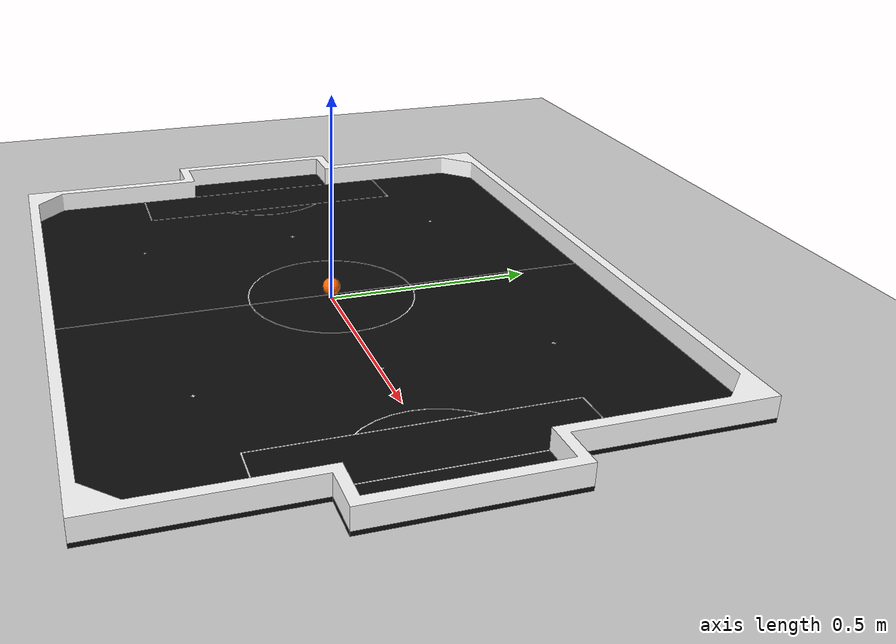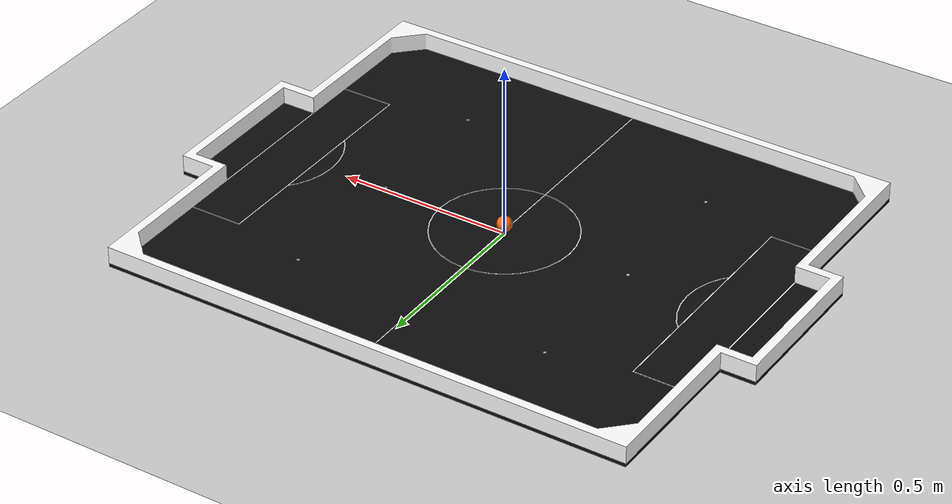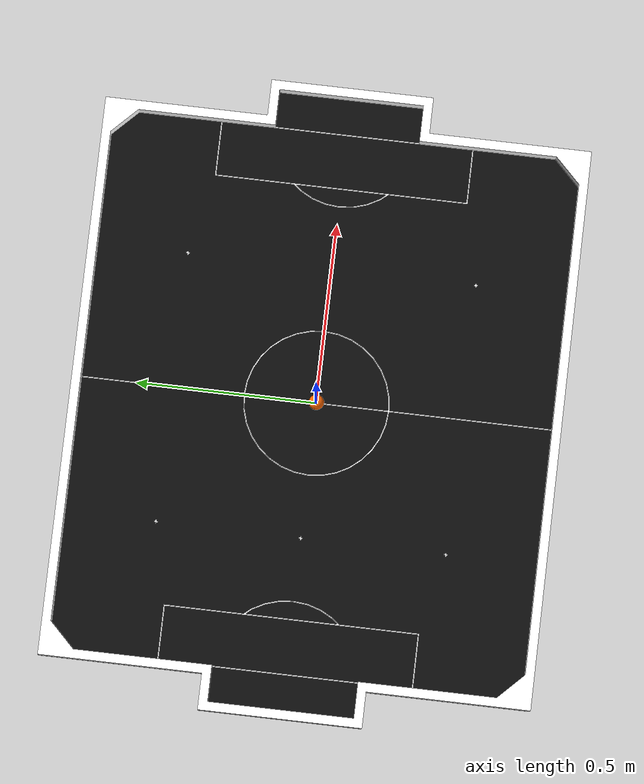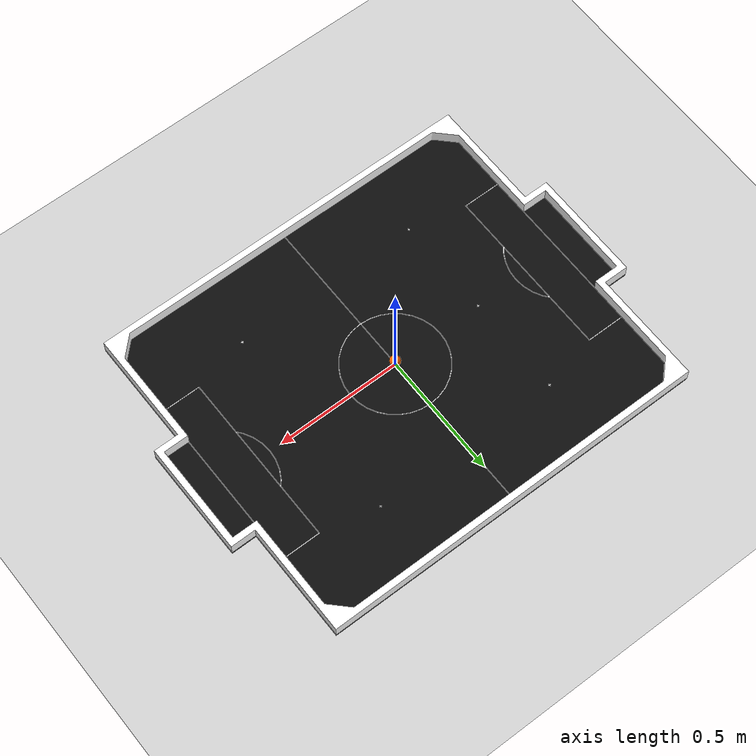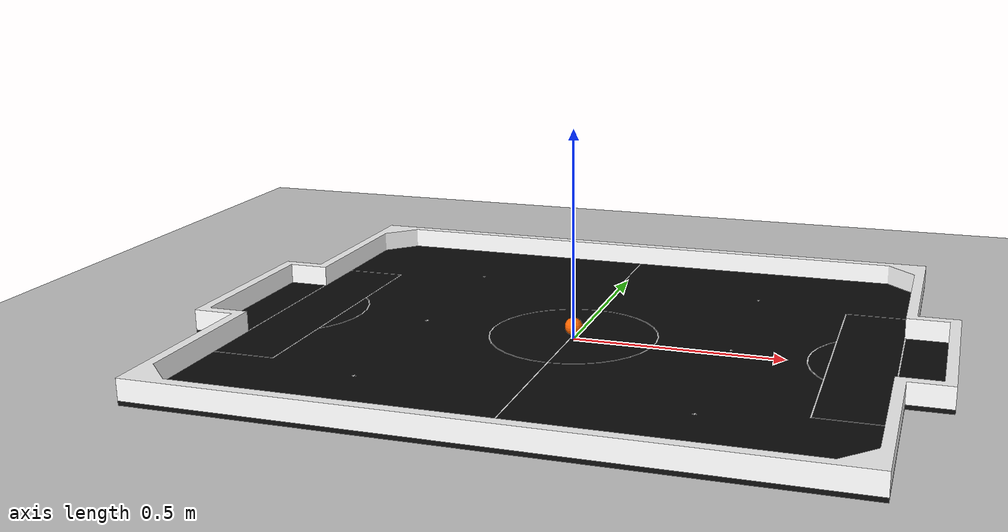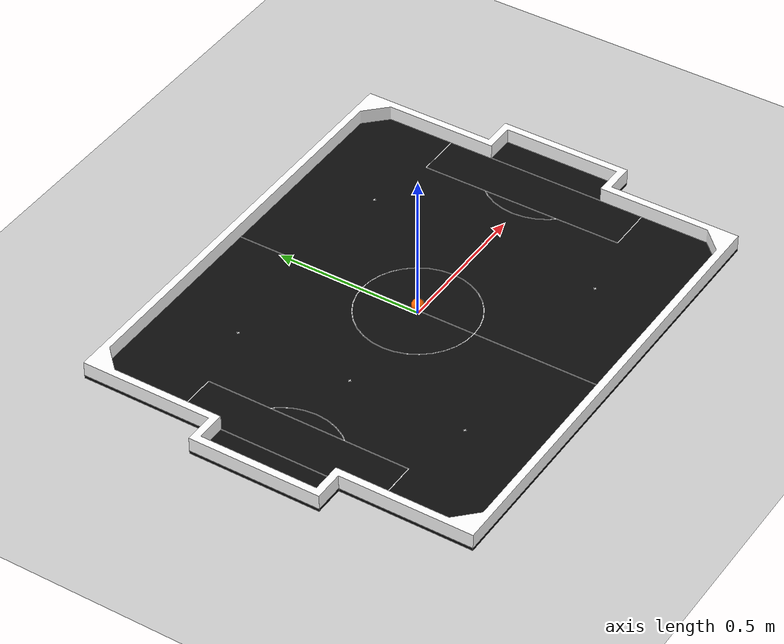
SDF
<?xml version="1.0"?>

<!-- Simple world with vss field and ball
  Ref:
  https://github.com/osrf/gazebo/blob/gazebo11/worlds/robocup09_spl_field.world -->

<!-- Isometric view version -->

<sdf version="1.5">
  <world name="vss_field">
    <!-- A global light source -->
    <include>
      <uri>https://fuel.gazebosim.org/1.0/OpenRobotics/models/Sun</uri>
    </include>

    <!-- A ground plane -->
    <include>
      <uri>https://fuel.gazebosim.org/1.0/OpenRobotics/models/Ground Plane</uri>
    </include>

    <!-- VSS Field -->
    <include>
      <pose>0 0 0.01 0 0 0</pose>
      <uri>model://vss_field</uri>
    </include>

    <!-- VSS ball -->
    <include>
      <pose>0 0 0.0315 0 0 0</pose>
      <uri>model://vss_ball</uri>
    </include>

    <physics type='ode'>
      <real_time_factor>0.5</real_time_factor>
    </physics>

    <!-- Configure camera angles for isometric view -->
    <gui fullscreen='0'>

      <window>
        <position_x>-1</position_x>
        <position_y>-1</position_y>
        <state></state>
        <width>1854</width>
        <height>1011</height>
        <style material_theme="Light" material_primary="#ff5722" material_accent="#03a9f4"
          toolbar_color_light="#f3f3f3" toolbar_text_color_light="#111111"
          toolbar_color_dark="#414141" toolbar_text_color_dark="#f3f3f3"
          plugin_toolbar_color_light="" plugin_toolbar_text_color_light=""
          plugin_toolbar_color_dark="" plugin_toolbar_text_color_dark="" />
        <menus>
          <drawer visible="true" default="false" />
          <plugins visible="true" from_paths="true" />
        </menus>
      </window>

      <plugin filename="MinimalScene" name="3D View">
        <gz-gui>
          <title>3D View</title>
          <property type="bool" key="showTitleBar">false</property>
          <property type="string" key="state">docked</property>
        </gz-gui>

        <engine>ogre2</engine>
        <scene>scene</scene>
        <ambient_light>1.0 1.0 1.0</ambient_light>
        <background_color>0.4 0.6 1.0</background_color>
        <camera_pose>0 0 1.5 1.570796 1.570796 0</camera_pose>
        <view_controller>orbit</view_controller>
      </plugin>

      <plugin filename="EntityContextMenuPlugin" name="Entity context menu">
        <gz-gui>
          <property key="x" type="double">0</property>
          <property key="y" type="double">0</property>
          <property key="z" type="double">0</property>
          <property key="width" type="double">5</property>
          <property key="height" type="double">5</property>
          <property key="opacity" type="double">1</property>
          <property key="enabled" type="bool">true</property>
          <property key="visible" type="bool">true</property>
          <property key="state" type="string">floating</property>
          <property key="baselineOffset" type="double">0</property>
          <property key="clip" type="bool">false</property>
          <property key="focus" type="bool">false</property>
          <property key="activeFocus" type="bool">false</property>
          <property key="activeFocusOnTab" type="bool">false</property>
          <property key="rotation" type="double">0</property>
          <property key="scale" type="double">1</property>
          <property key="smooth" type="bool">true</property>
          <property key="antialiasing" type="bool">false</property>
          <property key="implicitWidth" type="double">0</property>
          <property key="implicitHeight" type="double">0</property>
          <property key="availableWidth" type="double">5</property>
          <property key="availableHeight" type="double">5</property>
          <property key="padding" type="double">0</property>
          <property key="topPadding" type="double">0</property>
          <property key="leftPadding" type="double">0</property>
          <property key="rightPadding" type="double">0</property>
          <property key="bottomPadding" type="double">0</property>
          <property key="spacing" type="double">0</property>
          <property key="mirrored" type="bool">false</property>
          <property key="visualFocus" type="bool">false</property>
          <property key="hovered" type="bool">false</property>
          <property key="hoverEnabled" type="bool">true</property>
          <property key="wheelEnabled" type="bool">false</property>
          <property key="baselineOffset" type="double">0</property>
          <property key="horizontalPadding" type="double">0</property>
          <property key="verticalPadding" type="double">0</property>
          <property key="implicitContentWidth" type="double">0</property>
          <property key="implicitContentHeight" type="double">0</property>
          <property key="implicitBackgroundWidth" type="double">0</property>
          <property key="implicitBackgroundHeight" type="double">0</property>
          <property key="topInset" type="double">0</property>
          <property key="leftInset" type="double">0</property>
          <property key="rightInset" type="double">0</property>
          <property key="bottomInset" type="double">0</property>
          <property key="contentWidth" type="double">0</property>
          <property key="contentHeight" type="double">0</property>
          <property key="minSize" type="int">50</property>
          <property key="showDockButton" type="bool">true</property>
          <property key="showCloseButton" type="bool">true</property>
          <property key="showCollapseButton" type="bool">true</property>
          <property key="showTitleBar" type="bool">false</property>
          <property key="resizable" type="bool">true</property>
          <property key="standalone" type="bool">false</property>
          <property key="dockIcon" type="string">▁</property>
          <property key="collapseIcon" type="string">▴</property>
          <property key="expandIcon" type="string">▾</property>
          <property key="floatIcon" type="string">□</property>
          <property key="closeIcon" type="string">✕</property>
          <property key="cardBackground" type="string">#00000000</property>
          <property key="lastHeight" type="int">370</property>
          <property key="cardMinimumWidth" type="int">350</property>
          <property key="cardMinimumHeight" type="int">370</property>
          <property key="pluginToolBarColor" type="string">#bbdefb</property>
          <property key="pluginToolBarTextColor" type="string">#111111</property>
        </gz-gui>
      </plugin>

      <plugin filename="GzSceneManager" name="Scene Manager">
        <gz-gui>
          <property key="x" type="double">0</property>
          <property key="y" type="double">0</property>
          <property key="z" type="double">0</property>
          <property key="width" type="double">5</property>
          <property key="height" type="double">5</property>
          <property key="opacity" type="double">1</property>
          <property key="enabled" type="bool">true</property>
          <property key="visible" type="bool">true</property>
          <property key="state" type="string">floating</property>
          <property key="baselineOffset" type="double">0</property>
          <property key="clip" type="bool">false</property>
          <property key="focus" type="bool">false</property>
          <property key="activeFocus" type="bool">false</property>
          <property key="activeFocusOnTab" type="bool">false</property>
          <property key="rotation" type="double">0</property>
          <property key="scale" type="double">1</property>
          <property key="smooth" type="bool">true</property>
          <property key="antialiasing" type="bool">false</property>
          <property key="implicitWidth" type="double">0</property>
          <property key="implicitHeight" type="double">0</property>
          <property key="availableWidth" type="double">5</property>
          <property key="availableHeight" type="double">5</property>
          <property key="padding" type="double">0</property>
          <property key="topPadding" type="double">0</property>
          <property key="leftPadding" type="double">0</property>
          <property key="rightPadding" type="double">0</property>
          <property key="bottomPadding" type="double">0</property>
          <property key="spacing" type="double">0</property>
          <property key="mirrored" type="bool">false</property>
          <property key="visualFocus" type="bool">false</property>
          <property key="hovered" type="bool">false</property>
          <property key="hoverEnabled" type="bool">true</property>
          <property key="wheelEnabled" type="bool">false</property>
          <property key="baselineOffset" type="double">0</property>
          <property key="horizontalPadding" type="double">0</property>
          <property key="verticalPadding" type="double">0</property>
          <property key="implicitContentWidth" type="double">0</property>
          <property key="implicitContentHeight" type="double">0</property>
          <property key="implicitBackgroundWidth" type="double">0</property>
          <property key="implicitBackgroundHeight" type="double">0</property>
          <property key="topInset" type="double">0</property>
          <property key="leftInset" type="double">0</property>
          <property key="rightInset" type="double">0</property>
          <property key="bottomInset" type="double">0</property>
          <property key="contentWidth" type="double">0</property>
          <property key="contentHeight" type="double">0</property>
          <property key="minSize" type="int">50</property>
          <property key="showDockButton" type="bool">true</property>
          <property key="showCloseButton" type="bool">true</property>
          <property key="showCollapseButton" type="bool">true</property>
          <property key="showTitleBar" type="bool">false</property>
          <property key="resizable" type="bool">false</property>
          <property key="standalone" type="bool">false</property>
          <property key="dockIcon" type="string">▁</property>
          <property key="collapseIcon" type="string">▴</property>
          <property key="expandIcon" type="string">▾</property>
          <property key="floatIcon" type="string">□</property>
          <property key="closeIcon" type="string">✕</property>
          <property key="cardBackground" type="string">#00000000</property>
          <property key="lastHeight" type="int">130</property>
          <property key="cardMinimumWidth" type="int">350</property>
          <property key="cardMinimumHeight" type="int">130</property>
          <property key="pluginToolBarColor" type="string">#bbdefb</property>
          <property key="pluginToolBarTextColor" type="string">#111111</property>
        </gz-gui>
      </plugin>

      <plugin filename="InteractiveViewControl" name="Interactive view control">
        <gz-gui>
          <property key="x" type="double">0</property>
          <property key="y" type="double">0</property>
          <property key="z" type="double">0</property>
          <property key="width" type="double">5</property>
          <property key="height" type="double">5</property>
          <property key="opacity" type="double">1</property>
          <property key="enabled" type="bool">true</property>
          <property key="visible" type="bool">true</property>
          <property key="state" type="string">floating</property>
          <property key="baselineOffset" type="double">0</property>
          <property key="clip" type="bool">false</property>
          <property key="focus" type="bool">false</property>
          <property key="activeFocus" type="bool">false</property>
          <property key="activeFocusOnTab" type="bool">false</property>
          <property key="rotation" type="double">0</property>
          <property key="scale" type="double">1</property>
          <property key="smooth" type="bool">true</property>
          <property key="antialiasing" type="bool">false</property>
          <property key="implicitWidth" type="double">0</property>
          <property key="implicitHeight" type="double">0</property>
          <property key="availableWidth" type="double">5</property>
          <property key="availableHeight" type="double">5</property>
          <property key="padding" type="double">0</property>
          <property key="topPadding" type="double">0</property>
          <property key="leftPadding" type="double">0</property>
          <property key="rightPadding" type="double">0</property>
          <property key="bottomPadding" type="double">0</property>
          <property key="spacing" type="double">0</property>
          <property key="mirrored" type="bool">false</property>
          <property key="visualFocus" type="bool">false</property>
          <property key="hovered" type="bool">false</property>
          <property key="hoverEnabled" type="bool">true</property>
          <property key="wheelEnabled" type="bool">false</property>
          <property key="baselineOffset" type="double">0</property>
          <property key="horizontalPadding" type="double">0</property>
          <property key="verticalPadding" type="double">0</property>
          <property key="implicitContentWidth" type="double">0</property>
          <property key="implicitContentHeight" type="double">0</property>
          <property key="implicitBackgroundWidth" type="double">0</property>
          <property key="implicitBackgroundHeight" type="double">0</property>
          <property key="topInset" type="double">0</property>
          <property key="leftInset" type="double">0</property>
          <property key="rightInset" type="double">0</property>
          <property key="bottomInset" type="double">0</property>
          <property key="contentWidth" type="double">0</property>
          <property key="contentHeight" type="double">0</property>
          <property key="minSize" type="int">50</property>
          <property key="showDockButton" type="bool">true</property>
          <property key="showCloseButton" type="bool">true</property>
          <property key="showCollapseButton" type="bool">true</property>
          <property key="showTitleBar" type="bool">false</property>
          <property key="resizable" type="bool">false</property>
          <property key="standalone" type="bool">false</property>
          <property key="dockIcon" type="string">▁</property>
          <property key="collapseIcon" type="string">▴</property>
          <property key="expandIcon" type="string">▾</property>
          <property key="floatIcon" type="string">□</property>
          <property key="closeIcon" type="string">✕</property>
          <property key="cardBackground" type="string">#00000000</property>
          <property key="lastHeight" type="int">110</property>
          <property key="cardMinimumWidth" type="int">350</property>
          <property key="cardMinimumHeight" type="int">110</property>
          <property key="pluginToolBarColor" type="string">#bbdefb</property>
          <property key="pluginToolBarTextColor" type="string">#111111</property>
        </gz-gui>
      </plugin>

      <plugin filename="CameraTracking" name="Camera Tracking">
        <gz-gui>
          <property key="x" type="double">0</property>
          <property key="y" type="double">0</property>
          <property key="z" type="double">0</property>
          <property key="width" type="double">5</property>
          <property key="height" type="double">5</property>
          <property key="opacity" type="double">1</property>
          <property key="enabled" type="bool">true</property>
          <property key="visible" type="bool">true</property>
          <property key="state" type="string">floating</property>
          <property key="baselineOffset" type="double">0</property>
          <property key="clip" type="bool">false</property>
          <property key="focus" type="bool">false</property>
          <property key="activeFocus" type="bool">false</property>
          <property key="activeFocusOnTab" type="bool">false</property>
          <property key="rotation" type="double">0</property>
          <property key="scale" type="double">1</property>
          <property key="smooth" type="bool">true</property>
          <property key="antialiasing" type="bool">false</property>
          <property key="implicitWidth" type="double">0</property>
          <property key="implicitHeight" type="double">0</property>
          <property key="availableWidth" type="double">5</property>
          <property key="availableHeight" type="double">5</property>
          <property key="padding" type="double">0</property>
          <property key="topPadding" type="double">0</property>
          <property key="leftPadding" type="double">0</property>
          <property key="rightPadding" type="double">0</property>
          <property key="bottomPadding" type="double">0</property>
          <property key="spacing" type="double">0</property>
          <property key="mirrored" type="bool">false</property>
          <property key="visualFocus" type="bool">false</property>
          <property key="hovered" type="bool">false</property>
          <property key="hoverEnabled" type="bool">true</property>
          <property key="wheelEnabled" type="bool">false</property>
          <property key="baselineOffset" type="double">0</property>
          <property key="horizontalPadding" type="double">0</property>
          <property key="verticalPadding" type="double">0</property>
          <property key="implicitContentWidth" type="double">0</property>
          <property key="implicitContentHeight" type="double">0</property>
          <property key="implicitBackgroundWidth" type="double">0</property>
          <property key="implicitBackgroundHeight" type="double">0</property>
          <property key="topInset" type="double">0</property>
          <property key="leftInset" type="double">0</property>
          <property key="rightInset" type="double">0</property>
          <property key="bottomInset" type="double">0</property>
          <property key="contentWidth" type="double">0</property>
          <property key="contentHeight" type="double">0</property>
          <property key="minSize" type="int">50</property>
          <property key="showDockButton" type="bool">true</property>
          <property key="showCloseButton" type="bool">true</property>
          <property key="showCollapseButton" type="bool">true</property>
          <property key="showTitleBar" type="bool">false</property>
          <property key="resizable" type="bool">false</property>
          <property key="standalone" type="bool">false</property>
          <property key="dockIcon" type="string">▁</property>
          <property key="collapseIcon" type="string">▴</property>
          <property key="expandIcon" type="string">▾</property>
          <property key="floatIcon" type="string">□</property>
          <property key="closeIcon" type="string">✕</property>
          <property key="cardBackground" type="string">#00000000</property>
          <property key="lastHeight" type="int">260</property>
          <property key="cardMinimumWidth" type="int">350</property>
          <property key="cardMinimumHeight" type="int">260</property>
          <property key="pluginToolBarColor" type="string">#bbdefb</property>
          <property key="pluginToolBarTextColor" type="string">#111111</property>
        </gz-gui>
      </plugin>

      <plugin filename="MarkerManager" name="Marker manager">
        <gz-gui>
          <property key="x" type="double">0</property>
          <property key="y" type="double">0</property>
          <property key="z" type="double">0</property>
          <property key="width" type="double">5</property>
          <property key="height" type="double">5</property>
          <property key="opacity" type="double">1</property>
          <property key="enabled" type="bool">true</property>
          <property key="visible" type="bool">true</property>
          <property key="state" type="string">floating</property>
          <property key="baselineOffset" type="double">0</property>
          <property key="clip" type="bool">false</property>
          <property key="focus" type="bool">false</property>
          <property key="activeFocus" type="bool">false</property>
          <property key="activeFocusOnTab" type="bool">false</property>
          <property key="rotation" type="double">0</property>
          <property key="scale" type="double">1</property>
          <property key="smooth" type="bool">true</property>
          <property key="antialiasing" type="bool">false</property>
          <property key="implicitWidth" type="double">0</property>
          <property key="implicitHeight" type="double">0</property>
          <property key="availableWidth" type="double">5</property>
          <property key="availableHeight" type="double">5</property>
          <property key="padding" type="double">0</property>
          <property key="topPadding" type="double">0</property>
          <property key="leftPadding" type="double">0</property>
          <property key="rightPadding" type="double">0</property>
          <property key="bottomPadding" type="double">0</property>
          <property key="spacing" type="double">0</property>
          <property key="mirrored" type="bool">false</property>
          <property key="visualFocus" type="bool">false</property>
          <property key="hovered" type="bool">false</property>
          <property key="hoverEnabled" type="bool">true</property>
          <property key="wheelEnabled" type="bool">false</property>
          <property key="baselineOffset" type="double">0</property>
          <property key="horizontalPadding" type="double">0</property>
          <property key="verticalPadding" type="double">0</property>
          <property key="implicitContentWidth" type="double">0</property>
          <property key="implicitContentHeight" type="double">0</property>
          <property key="implicitBackgroundWidth" type="double">0</property>
          <property key="implicitBackgroundHeight" type="double">0</property>
          <property key="topInset" type="double">0</property>
          <property key="leftInset" type="double">0</property>
          <property key="rightInset" type="double">0</property>
          <property key="bottomInset" type="double">0</property>
          <property key="contentWidth" type="double">0</property>
          <property key="contentHeight" type="double">0</property>
          <property key="minSize" type="int">50</property>
          <property key="showDockButton" type="bool">true</property>
          <property key="showCloseButton" type="bool">true</property>
          <property key="showCollapseButton" type="bool">true</property>
          <property key="showTitleBar" type="bool">false</property>
          <property key="resizable" type="bool">false</property>
          <property key="standalone" type="bool">false</property>
          <property key="dockIcon" type="string">▁</property>
          <property key="collapseIcon" type="string">▴</property>
          <property key="expandIcon" type="string">▾</property>
          <property key="floatIcon" type="string">□</property>
          <property key="closeIcon" type="string">✕</property>
          <property key="cardBackground" type="string">#00000000</property>
          <property key="lastHeight" type="int">230</property>
          <property key="cardMinimumWidth" type="int">350</property>
          <property key="cardMinimumHeight" type="int">230</property>
          <property key="pluginToolBarColor" type="string">#bbdefb</property>
          <property key="pluginToolBarTextColor" type="string">#111111</property>
        </gz-gui>
      </plugin>

      <plugin filename="SelectEntities" name="Select Entities">
        <gz-gui>
          <property key="x" type="double">0</property>
          <property key="y" type="double">0</property>
          <property key="z" type="double">0</property>
          <property key="width" type="double">5</property>
          <property key="height" type="double">5</property>
          <property key="opacity" type="double">1</property>
          <property key="enabled" type="bool">true</property>
          <property key="visible" type="bool">true</property>
          <property key="state" type="string">floating</property>
          <property key="baselineOffset" type="double">0</property>
          <property key="clip" type="bool">false</property>
          <property key="focus" type="bool">false</property>
          <property key="activeFocus" type="bool">false</property>
          <property key="activeFocusOnTab" type="bool">false</property>
          <property key="rotation" type="double">0</property>
          <property key="scale" type="double">1</property>
          <property key="smooth" type="bool">true</property>
          <property key="antialiasing" type="bool">false</property>
          <property key="implicitWidth" type="double">0</property>
          <property key="implicitHeight" type="double">0</property>
          <property key="availableWidth" type="double">5</property>
          <property key="availableHeight" type="double">5</property>
          <property key="padding" type="double">0</property>
          <property key="topPadding" type="double">0</property>
          <property key="leftPadding" type="double">0</property>
          <property key="rightPadding" type="double">0</property>
          <property key="bottomPadding" type="double">0</property>
          <property key="spacing" type="double">0</property>
          <property key="mirrored" type="bool">false</property>
          <property key="visualFocus" type="bool">false</property>
          <property key="hovered" type="bool">false</property>
          <property key="hoverEnabled" type="bool">true</property>
          <property key="wheelEnabled" type="bool">false</property>
          <property key="baselineOffset" type="double">0</property>
          <property key="horizontalPadding" type="double">0</property>
          <property key="verticalPadding" type="double">0</property>
          <property key="implicitContentWidth" type="double">0</property>
          <property key="implicitContentHeight" type="double">0</property>
          <property key="implicitBackgroundWidth" type="double">0</property>
          <property key="implicitBackgroundHeight" type="double">0</property>
          <property key="topInset" type="double">0</property>
          <property key="leftInset" type="double">0</property>
          <property key="rightInset" type="double">0</property>
          <property key="bottomInset" type="double">0</property>
          <property key="contentWidth" type="double">0</property>
          <property key="contentHeight" type="double">0</property>
          <property key="minSize" type="int">50</property>
          <property key="showDockButton" type="bool">true</property>
          <property key="showCloseButton" type="bool">true</property>
          <property key="showCollapseButton" type="bool">true</property>
          <property key="showTitleBar" type="bool">false</property>
          <property key="resizable" type="bool">false</property>
          <property key="standalone" type="bool">false</property>
          <property key="dockIcon" type="string">▁</property>
          <property key="collapseIcon" type="string">▴</property>
          <property key="expandIcon" type="string">▾</property>
          <property key="floatIcon" type="string">□</property>
          <property key="closeIcon" type="string">✕</property>
          <property key="cardBackground" type="string">#00000000</property>
          <property key="lastHeight" type="int">90</property>
          <property key="cardMinimumWidth" type="int">350</property>
          <property key="cardMinimumHeight" type="int">90</property>
          <property key="pluginToolBarColor" type="string">#bbdefb</property>
          <property key="pluginToolBarTextColor" type="string">#111111</property>
        </gz-gui>
      </plugin>

      <plugin filename="Spawn" name="Spawn Entities">
        <gz-gui>
          <property key="x" type="double">0</property>
          <property key="y" type="double">0</property>
          <property key="z" type="double">0</property>
          <property key="width" type="double">5</property>
          <property key="height" type="double">5</property>
          <property key="opacity" type="double">1</property>
          <property key="enabled" type="bool">true</property>
          <property key="visible" type="bool">true</property>
          <property key="state" type="string">floating</property>
          <property key="baselineOffset" type="double">0</property>
          <property key="clip" type="bool">false</property>
          <property key="focus" type="bool">false</property>
          <property key="activeFocus" type="bool">false</property>
          <property key="activeFocusOnTab" type="bool">false</property>
          <property key="rotation" type="double">0</property>
          <property key="scale" type="double">1</property>
          <property key="smooth" type="bool">true</property>
          <property key="antialiasing" type="bool">false</property>
          <property key="implicitWidth" type="double">0</property>
          <property key="implicitHeight" type="double">0</property>
          <property key="availableWidth" type="double">5</property>
          <property key="availableHeight" type="double">5</property>
          <property key="padding" type="double">0</property>
          <property key="topPadding" type="double">0</property>
          <property key="leftPadding" type="double">0</property>
          <property key="rightPadding" type="double">0</property>
          <property key="bottomPadding" type="double">0</property>
          <property key="spacing" type="double">0</property>
          <property key="mirrored" type="bool">false</property>
          <property key="visualFocus" type="bool">false</property>
          <property key="hovered" type="bool">false</property>
          <property key="hoverEnabled" type="bool">true</property>
          <property key="wheelEnabled" type="bool">false</property>
          <property key="baselineOffset" type="double">0</property>
          <property key="horizontalPadding" type="double">0</property>
          <property key="verticalPadding" type="double">0</property>
          <property key="implicitContentWidth" type="double">0</property>
          <property key="implicitContentHeight" type="double">0</property>
          <property key="implicitBackgroundWidth" type="double">0</property>
          <property key="implicitBackgroundHeight" type="double">0</property>
          <property key="topInset" type="double">0</property>
          <property key="leftInset" type="double">0</property>
          <property key="rightInset" type="double">0</property>
          <property key="bottomInset" type="double">0</property>
          <property key="contentWidth" type="double">0</property>
          <property key="contentHeight" type="double">0</property>
          <property key="minSize" type="int">50</property>
          <property key="showDockButton" type="bool">true</property>
          <property key="showCloseButton" type="bool">true</property>
          <property key="showCollapseButton" type="bool">true</property>
          <property key="showTitleBar" type="bool">false</property>
          <property key="resizable" type="bool">false</property>
          <property key="standalone" type="bool">false</property>
          <property key="dockIcon" type="string">▁</property>
          <property key="collapseIcon" type="string">▴</property>
          <property key="expandIcon" type="string">▾</property>
          <property key="floatIcon" type="string">□</property>
          <property key="closeIcon" type="string">✕</property>
          <property key="cardBackground" type="string">#00000000</property>
          <property key="lastHeight" type="int">110</property>
          <property key="cardMinimumWidth" type="int">350</property>
          <property key="cardMinimumHeight" type="int">110</property>
          <property key="pluginToolBarColor" type="string">#bbdefb</property>
          <property key="pluginToolBarTextColor" type="string">#111111</property>
        </gz-gui>
      </plugin>

      <plugin filename="VisualizationCapabilities" name="Visualization Capabilities">
        <gz-gui>
          <property key="x" type="double">0</property>
          <property key="y" type="double">0</property>
          <property key="z" type="double">0</property>
          <property key="width" type="double">5</property>
          <property key="height" type="double">5</property>
          <property key="opacity" type="double">1</property>
          <property key="enabled" type="bool">true</property>
          <property key="visible" type="bool">true</property>
          <property key="state" type="string">floating</property>
          <property key="baselineOffset" type="double">0</property>
          <property key="clip" type="bool">false</property>
          <property key="focus" type="bool">false</property>
          <property key="activeFocus" type="bool">false</property>
          <property key="activeFocusOnTab" type="bool">false</property>
          <property key="rotation" type="double">0</property>
          <property key="scale" type="double">1</property>
          <property key="smooth" type="bool">true</property>
          <property key="antialiasing" type="bool">false</property>
          <property key="implicitWidth" type="double">0</property>
          <property key="implicitHeight" type="double">0</property>
          <property key="availableWidth" type="double">5</property>
          <property key="availableHeight" type="double">5</property>
          <property key="padding" type="double">0</property>
          <property key="topPadding" type="double">0</property>
          <property key="leftPadding" type="double">0</property>
          <property key="rightPadding" type="double">0</property>
          <property key="bottomPadding" type="double">0</property>
          <property key="spacing" type="double">0</property>
          <property key="mirrored" type="bool">false</property>
          <property key="visualFocus" type="bool">false</property>
          <property key="hovered" type="bool">false</property>
          <property key="hoverEnabled" type="bool">true</property>
          <property key="wheelEnabled" type="bool">false</property>
          <property key="baselineOffset" type="double">0</property>
          <property key="horizontalPadding" type="double">0</property>
          <property key="verticalPadding" type="double">0</property>
          <property key="implicitContentWidth" type="double">0</property>
          <property key="implicitContentHeight" type="double">0</property>
          <property key="implicitBackgroundWidth" type="double">0</property>
          <property key="implicitBackgroundHeight" type="double">0</property>
          <property key="topInset" type="double">0</property>
          <property key="leftInset" type="double">0</property>
          <property key="rightInset" type="double">0</property>
          <property key="bottomInset" type="double">0</property>
          <property key="contentWidth" type="double">0</property>
          <property key="contentHeight" type="double">0</property>
          <property key="minSize" type="int">50</property>
          <property key="showDockButton" type="bool">true</property>
          <property key="showCloseButton" type="bool">true</property>
          <property key="showCollapseButton" type="bool">true</property>
          <property key="showTitleBar" type="bool">false</property>
          <property key="resizable" type="bool">false</property>
          <property key="standalone" type="bool">false</property>
          <property key="dockIcon" type="string">▁</property>
          <property key="collapseIcon" type="string">▴</property>
          <property key="expandIcon" type="string">▾</property>
          <property key="floatIcon" type="string">□</property>
          <property key="closeIcon" type="string">✕</property>
          <property key="cardBackground" type="string">#00000000</property>
          <property key="lastHeight" type="int">130</property>
          <property key="cardMinimumWidth" type="int">350</property>
          <property key="cardMinimumHeight" type="int">130</property>
          <property key="pluginToolBarColor" type="string">#bbdefb</property>
          <property key="pluginToolBarTextColor" type="string">#111111</property>
        </gz-gui>
      </plugin>

      <plugin filename="WorldControl" name="World control">
        <gz-gui>
          <title>World control</title>
          <anchors target="3D View">
            <line own="left" target="left" />
            <line own="bottom" target="bottom" />
          </anchors>
          <property key="x" type="double">0</property>
          <property key="y" type="double">891</property>
          <property key="z" type="double">1</property>
          <property key="width" type="double">1199</property>
          <property key="height" type="double">72</property>
          <property key="opacity" type="double">1</property>
          <property key="enabled" type="bool">true</property>
          <property key="visible" type="bool">true</property>
          <property key="state" type="string">floating</property>
          <property key="baselineOffset" type="double">0</property>
          <property key="clip" type="bool">false</property>
          <property key="focus" type="bool">false</property>
          <property key="activeFocus" type="bool">false</property>
          <property key="activeFocusOnTab" type="bool">false</property>
          <property key="rotation" type="double">0</property>
          <property key="scale" type="double">1</property>
          <property key="smooth" type="bool">true</property>
          <property key="antialiasing" type="bool">false</property>
          <property key="implicitWidth" type="double">0</property>
          <property key="implicitHeight" type="double">0</property>
          <property key="availableWidth" type="double">1199</property>
          <property key="availableHeight" type="double">72</property>
          <property key="padding" type="double">0</property>
          <property key="topPadding" type="double">0</property>
          <property key="leftPadding" type="double">0</property>
          <property key="rightPadding" type="double">0</property>
          <property key="bottomPadding" type="double">0</property>
          <property key="spacing" type="double">0</property>
          <property key="mirrored" type="bool">false</property>
          <property key="visualFocus" type="bool">false</property>
          <property key="hovered" type="bool">false</property>
          <property key="hoverEnabled" type="bool">true</property>
          <property key="wheelEnabled" type="bool">false</property>
          <property key="baselineOffset" type="double">0</property>
          <property key="horizontalPadding" type="double">0</property>
          <property key="verticalPadding" type="double">0</property>
          <property key="implicitContentWidth" type="double">0</property>
          <property key="implicitContentHeight" type="double">0</property>
          <property key="implicitBackgroundWidth" type="double">0</property>
          <property key="implicitBackgroundHeight" type="double">0</property>
          <property key="topInset" type="double">0</property>
          <property key="leftInset" type="double">0</property>
          <property key="rightInset" type="double">0</property>
          <property key="bottomInset" type="double">0</property>
          <property key="contentWidth" type="double">0</property>
          <property key="contentHeight" type="double">0</property>
          <property key="minSize" type="int">50</property>
          <property key="showDockButton" type="bool">true</property>
          <property key="showCloseButton" type="bool">true</property>
          <property key="showCollapseButton" type="bool">true</property>
          <property key="showTitleBar" type="bool">false</property>
          <property key="resizable" type="bool">false</property>
          <property key="standalone" type="bool">false</property>
          <property key="dockIcon" type="string">▁</property>
          <property key="collapseIcon" type="string">▴</property>
          <property key="expandIcon" type="string">▾</property>
          <property key="floatIcon" type="string">□</property>
          <property key="closeIcon" type="string">✕</property>
          <property key="cardBackground" type="string">#00000000</property>
          <property key="lastHeight" type="int">100</property>
          <property key="cardMinimumWidth" type="int">100</property>
          <property key="cardMinimumHeight" type="int">100</property>
          <property key="pluginToolBarColor" type="string">#bbdefb</property>
          <property key="pluginToolBarTextColor" type="string">#111111</property>
        </gz-gui>
        <play_pause>true</play_pause>
        <step>true</step>
        <start_paused>true</start_paused>
        <use_event>true</use_event>
      </plugin>

      <plugin filename="WorldStats" name="World stats">
        <gz-gui>
          <title>World stats</title>
          <anchors target="3D View">
            <line own="right" target="right" />
            <line own="bottom" target="bottom" />
          </anchors>
          <property key="x" type="double">1145</property>
          <property key="y" type="double">853</property>
          <property key="z" type="double">1</property>
          <property key="width" type="double">290</property>
          <property key="height" type="double">110</property>
          <property key="opacity" type="double">1</property>
          <property key="enabled" type="bool">true</property>
          <property key="visible" type="bool">true</property>
          <property key="state" type="string">floating</property>
          <property key="baselineOffset" type="double">0</property>
          <property key="clip" type="bool">false</property>
          <property key="focus" type="bool">false</property>
          <property key="activeFocus" type="bool">false</property>
          <property key="activeFocusOnTab" type="bool">false</property>
          <property key="rotation" type="double">0</property>
          <property key="scale" type="double">1</property>
          <property key="smooth" type="bool">true</property>
          <property key="antialiasing" type="bool">false</property>
          <property key="implicitWidth" type="double">0</property>
          <property key="implicitHeight" type="double">0</property>
          <property key="availableWidth" type="double">290</property>
          <property key="availableHeight" type="double">110</property>
          <property key="padding" type="double">0</property>
          <property key="topPadding" type="double">0</property>
          <property key="leftPadding" type="double">0</property>
          <property key="rightPadding" type="double">0</property>
          <property key="bottomPadding" type="double">0</property>
          <property key="spacing" type="double">0</property>
          <property key="mirrored" type="bool">false</property>
          <property key="visualFocus" type="bool">false</property>
          <property key="hovered" type="bool">false</property>
          <property key="hoverEnabled" type="bool">true</property>
          <property key="wheelEnabled" type="bool">false</property>
          <property key="baselineOffset" type="double">0</property>
          <property key="horizontalPadding" type="double">0</property>
          <property key="verticalPadding" type="double">0</property>
          <property key="implicitContentWidth" type="double">0</property>
          <property key="implicitContentHeight" type="double">0</property>
          <property key="implicitBackgroundWidth" type="double">0</property>
          <property key="implicitBackgroundHeight" type="double">0</property>
          <property key="topInset" type="double">0</property>
          <property key="leftInset" type="double">0</property>
          <property key="rightInset" type="double">0</property>
          <property key="bottomInset" type="double">0</property>
          <property key="contentWidth" type="double">0</property>
          <property key="contentHeight" type="double">0</property>
          <property key="minSize" type="int">50</property>
          <property key="showDockButton" type="bool">true</property>
          <property key="showCloseButton" type="bool">true</property>
          <property key="showCollapseButton" type="bool">true</property>
          <property key="showTitleBar" type="bool">false</property>
          <property key="resizable" type="bool">false</property>
          <property key="standalone" type="bool">false</property>
          <property key="dockIcon" type="string">▁</property>
          <property key="collapseIcon" type="string">▴</property>
          <property key="expandIcon" type="string">▾</property>
          <property key="floatIcon" type="string">□</property>
          <property key="closeIcon" type="string">✕</property>
          <property key="cardBackground" type="string">#00000000</property>
          <property key="lastHeight" type="int">110</property>
          <property key="cardMinimumWidth" type="int">290</property>
          <property key="cardMinimumHeight" type="int">110</property>
          <property key="pluginToolBarColor" type="string">#bbdefb</property>
          <property key="pluginToolBarTextColor" type="string">#111111</property>
        </gz-gui>
        <sim_time>true</sim_time>
        <real_time>true</real_time>
        <real_time_factor>true</real_time_factor>
        <iterations>true</iterations>
      </plugin>

      <plugin filename="ComponentInspector" name="Component inspector">
        <gz-gui>
          <property key="x" type="double">0</property>
          <property key="y" type="double">0</property>
          <property key="z" type="double">0</property>
          <property key="width" type="double">400</property>
          <property key="height" type="double">375</property>
          <property key="opacity" type="double">1</property>
          <property key="enabled" type="bool">true</property>
          <property key="visible" type="bool">true</property>
          <property key="state" type="string">docked</property>
          <property key="baselineOffset" type="double">0</property>
          <property key="clip" type="bool">false</property>
          <property key="focus" type="bool">false</property>
          <property key="activeFocus" type="bool">false</property>
          <property key="activeFocusOnTab" type="bool">false</property>
          <property key="rotation" type="double">0</property>
          <property key="scale" type="double">1</property>
          <property key="smooth" type="bool">true</property>
          <property key="antialiasing" type="bool">false</property>
          <property key="implicitWidth" type="double">0</property>
          <property key="implicitHeight" type="double">0</property>
          <property key="availableWidth" type="double">400</property>
          <property key="availableHeight" type="double">375</property>
          <property key="padding" type="double">0</property>
          <property key="topPadding" type="double">0</property>
          <property key="leftPadding" type="double">0</property>
          <property key="rightPadding" type="double">0</property>
          <property key="bottomPadding" type="double">0</property>
          <property key="spacing" type="double">0</property>
          <property key="mirrored" type="bool">false</property>
          <property key="visualFocus" type="bool">false</property>
          <property key="hovered" type="bool">false</property>
          <property key="hoverEnabled" type="bool">true</property>
          <property key="wheelEnabled" type="bool">false</property>
          <property key="baselineOffset" type="double">0</property>
          <property key="horizontalPadding" type="double">0</property>
          <property key="verticalPadding" type="double">0</property>
          <property key="implicitContentWidth" type="double">0</property>
          <property key="implicitContentHeight" type="double">0</property>
          <property key="implicitBackgroundWidth" type="double">0</property>
          <property key="implicitBackgroundHeight" type="double">0</property>
          <property key="topInset" type="double">0</property>
          <property key="leftInset" type="double">0</property>
          <property key="rightInset" type="double">0</property>
          <property key="bottomInset" type="double">0</property>
          <property key="contentWidth" type="double">0</property>
          <property key="contentHeight" type="double">0</property>
          <property key="minSize" type="int">50</property>
          <property key="showDockButton" type="bool">true</property>
          <property key="showCloseButton" type="bool">true</property>
          <property key="showCollapseButton" type="bool">true</property>
          <property key="showTitleBar" type="bool">false</property>
          <property key="resizable" type="bool">true</property>
          <property key="standalone" type="bool">false</property>
          <property key="dockIcon" type="string">▁</property>
          <property key="collapseIcon" type="string">▴</property>
          <property key="expandIcon" type="string">▾</property>
          <property key="floatIcon" type="string">□</property>
          <property key="closeIcon" type="string">✕</property>
          <property key="cardBackground" type="string">#00000000</property>
          <property key="lastHeight" type="int">50</property>
          <property key="cardMinimumWidth" type="int">400</property>
          <property key="cardMinimumHeight" type="int">375</property>
          <property key="pluginToolBarColor" type="string">#bbdefb</property>
          <property key="pluginToolBarTextColor" type="string">#111111</property>
        </gz-gui>
      </plugin>

      <plugin filename="EntityTree" name="Entity tree">
        <gz-gui>
          <property key="x" type="double">0</property>
          <property key="y" type="double">0</property>
          <property key="z" type="double">0</property>
          <property key="width" type="double">400</property>
          <property key="height" type="double">375</property>
          <property key="opacity" type="double">1</property>
          <property key="enabled" type="bool">true</property>
          <property key="visible" type="bool">true</property>
          <property key="state" type="string">docked</property>
          <property key="baselineOffset" type="double">0</property>
          <property key="clip" type="bool">false</property>
          <property key="focus" type="bool">false</property>
          <property key="activeFocus" type="bool">false</property>
          <property key="activeFocusOnTab" type="bool">false</property>
          <property key="rotation" type="double">0</property>
          <property key="scale" type="double">1</property>
          <property key="smooth" type="bool">true</property>
          <property key="antialiasing" type="bool">false</property>
          <property key="implicitWidth" type="double">0</property>
          <property key="implicitHeight" type="double">0</property>
          <property key="availableWidth" type="double">400</property>
          <property key="availableHeight" type="double">375</property>
          <property key="padding" type="double">0</property>
          <property key="topPadding" type="double">0</property>
          <property key="leftPadding" type="double">0</property>
          <property key="rightPadding" type="double">0</property>
          <property key="bottomPadding" type="double">0</property>
          <property key="spacing" type="double">0</property>
          <property key="mirrored" type="bool">false</property>
          <property key="visualFocus" type="bool">false</property>
          <property key="hovered" type="bool">false</property>
          <property key="hoverEnabled" type="bool">true</property>
          <property key="wheelEnabled" type="bool">false</property>
          <property key="baselineOffset" type="double">0</property>
          <property key="horizontalPadding" type="double">0</property>
          <property key="verticalPadding" type="double">0</property>
          <property key="implicitContentWidth" type="double">0</property>
          <property key="implicitContentHeight" type="double">0</property>
          <property key="implicitBackgroundWidth" type="double">0</property>
          <property key="implicitBackgroundHeight" type="double">0</property>
          <property key="topInset" type="double">0</property>
          <property key="leftInset" type="double">0</property>
          <property key="rightInset" type="double">0</property>
          <property key="bottomInset" type="double">0</property>
          <property key="contentWidth" type="double">0</property>
          <property key="contentHeight" type="double">0</property>
          <property key="minSize" type="int">50</property>
          <property key="showDockButton" type="bool">true</property>
          <property key="showCloseButton" type="bool">true</property>
          <property key="showCollapseButton" type="bool">true</property>
          <property key="showTitleBar" type="bool">false</property>
          <property key="resizable" type="bool">true</property>
          <property key="standalone" type="bool">false</property>
          <property key="dockIcon" type="string">▁</property>
          <property key="collapseIcon" type="string">▴</property>
          <property key="expandIcon" type="string">▾</property>
          <property key="floatIcon" type="string">□</property>
          <property key="closeIcon" type="string">✕</property>
          <property key="cardBackground" type="string">#00000000</property>
          <property key="lastHeight" type="int">50</property>
          <property key="cardMinimumWidth" type="int">400</property>
          <property key="cardMinimumHeight" type="int">375</property>
          <property key="pluginToolBarColor" type="string">#bbdefb</property>
          <property key="pluginToolBarTextColor" type="string">#111111</property>
        </gz-gui>
      </plugin>

    </gui>
  </world>
</sdf>

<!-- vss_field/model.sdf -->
<!-- To generate a sdf file from urdf, run the command
    gz sdf -p /model.urdf > /model.sdf -->

<!-- Physical parameters (contact properties) taken from
https://bitbucket.org/osrf/gazebo/src/gazebo11/models/ground_plane/model.sdf -->

<sdf version="1.5">
  <model name='vss_field'>

    <static>true</static>

    <link name='base_link'>
      <pose frame=''>0 0 0 0 0 0</pose>

      <inertial>
        <pose frame=''>0 0 0.01 0 0 0</pose>
        <mass>4.8995</mass>
        <inertia>
          <ixx>0.541513</ixx>
          <ixy>5.91216e-07</ixy>
          <ixz>-5.64316e-09</ixz>
          <iyy>0.271333</iyy>
          <iyz>1.16883e-08</iyz>
          <izz>0.81109</izz>
        </inertia>
      </inertial>

      <collision name='base_link_collision'>
        <pose>0 0 -0.005 0 0 0</pose>
        <geometry>
          <box>
            <size>1.75 1.35 0.01</size>
          </box>
        </geometry>
        <surface>
          <friction>
            <ode>
              <mu>0.6</mu>
              <mu2>0.6</mu2>
            </ode>
            <torsional>
              <ode/>
            </torsional>
          </friction>
          <bounce/>
        </surface>
        <max_contacts>20</max_contacts>
      </collision>
      <collision name='laterais_link_collision'>
        <pose frame=''>0 0 0 0 0 0</pose>
        <geometry>
          <mesh>
            <scale>1 1 1</scale>
            <uri>model://vss_field/meshes/laterais_link.stl</uri>
          </mesh>
        </geometry>
      </collision>

      <visual name='base_link_visual'>
        <pose frame=''>0 0 0 0 0 0</pose>
        <geometry>
          <mesh>
            <scale>1 1 1</scale>
            <uri>model://vss_field/meshes/base_link.stl</uri>
          </mesh>
        </geometry>
        <material>
          <ambient>.05 .05 .05 1</ambient>
          <diffuse>.05 .05 .05 1</diffuse>
          <specular>.1 .1 .1 1</specular>
        </material>
      </visual>

      <visual name='marcas_campo_visual'>
        <pose frame=''>0 0 0.0001 0 0 0</pose>
        <geometry>
          <mesh>
            <scale>1 1 1</scale>
            <uri>model://vss_field/meshes/marcas_campo.stl</uri>
          </mesh>
        </geometry>
        <material>
          <ambient>1 1 1 1</ambient>
          <diffuse>1 1 1 1</diffuse>
          <specular>.1 .1 .1 1</specular>
        </material>
      </visual>

      <visual name='laterais_link_visual'>
        <pose frame=''>0 0 0 0 0 0</pose>
        <geometry>
          <mesh>
            <scale>1 1 1</scale>
            <uri>model://vss_field/meshes/laterais_link.stl</uri>
          </mesh>
        </geometry>
        <material>
          <ambient>1 1 1 1</ambient>
          <diffuse>1 1 1 1</diffuse>
          <specular>.1 .1 .1 1</specular>
        </material>
      </visual>

    </link>

  </model>
</sdf>

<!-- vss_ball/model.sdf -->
<!-- File generated with Gazebo Model Editor
Proprieties according to IEEE 3x3 rules -->

<sdf version="1.5">
  <model name='vss_ball'>

    <link name='sphere'>
      <inertial>
        <mass>0.046</mass>
        <inertia>
          <!-- inertia based on solid sphere 2/5 mr^2 -->
          <ixx>2.935e-05</ixx>
          <iyy>2.935e-05</iyy>
          <izz>2.935e-05</izz>
          <ixy>0</ixy>
          <ixz>0</ixz>
          <iyz>0</iyz>
        </inertia>
        <pose frame=''>0 0 0 0 0 0</pose>
      </inertial>

      <pose frame=''>0 0 0 0 0 0</pose>
      <gravity>1</gravity>
      <self_collide>0</self_collide>
      <kinematic>0</kinematic>
      <enable_wind>0</enable_wind>

      <visual name='visual'>
        <pose frame=''>0 0 0 0 0 0</pose>
        <geometry>
          <sphere>
            <radius>0.02135</radius>
          </sphere>
        </geometry>
        <material>
          <ambient>1 .4 0 1</ambient>
          <diffuse>1 .4 0 1</diffuse>
          <specular>.1 .1 .1 1</specular>
        </material>
        <transparency>0</transparency>
        <cast_shadows>0</cast_shadows>
      </visual>

      <collision name='collision'>
        <laser_retro>0</laser_retro>
        <max_contacts>10</max_contacts>
        <pose frame=''>0 0 0 0 0 0</pose>
        <geometry>
          <sphere>
            <radius>0.02135</radius>
          </sphere>
        </geometry>
        <surface>
          <friction>
            <ode>
              <mu>0.1</mu>
              <mu2>0.1</mu2>
            </ode>
            <torsional>
              <coefficient>1</coefficient>
              <patch_radius>0</patch_radius>
              <surface_radius>0</surface_radius>
              <use_patch_radius>1</use_patch_radius>
            </torsional>
          </friction>
          <bounce>
            <restitution_coefficient>0.9</restitution_coefficient>
            <threshold>1e+06</threshold>
          </bounce>
          <contact>
            <collide_without_contact>0</collide_without_contact>
            <collide_without_contact_bitmask>1</collide_without_contact_bitmask>
            <collide_bitmask>1</collide_bitmask>
            <ode>
              <soft_cfm>0</soft_cfm>
              <soft_erp>0.2</soft_erp>
              <kp>1e+13</kp>
              <kd>1</kd>
              <max_vel>10</max_vel>
              <min_depth>0</min_depth>
            </ode>
          </contact>
        </surface>
      </collision>
    </link>
    <static>0</static>
    <allow_auto_disable>1</allow_auto_disable>
  </model>
</sdf>
